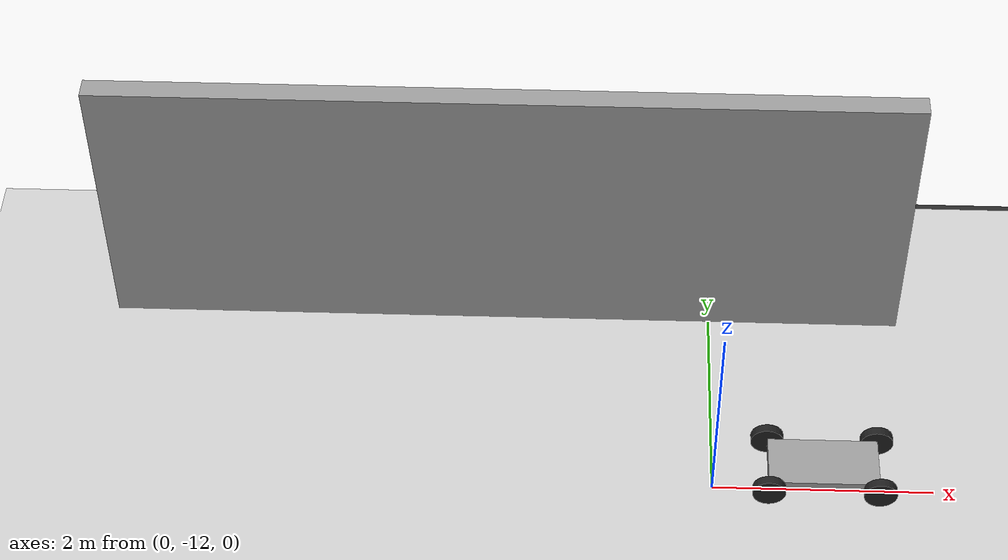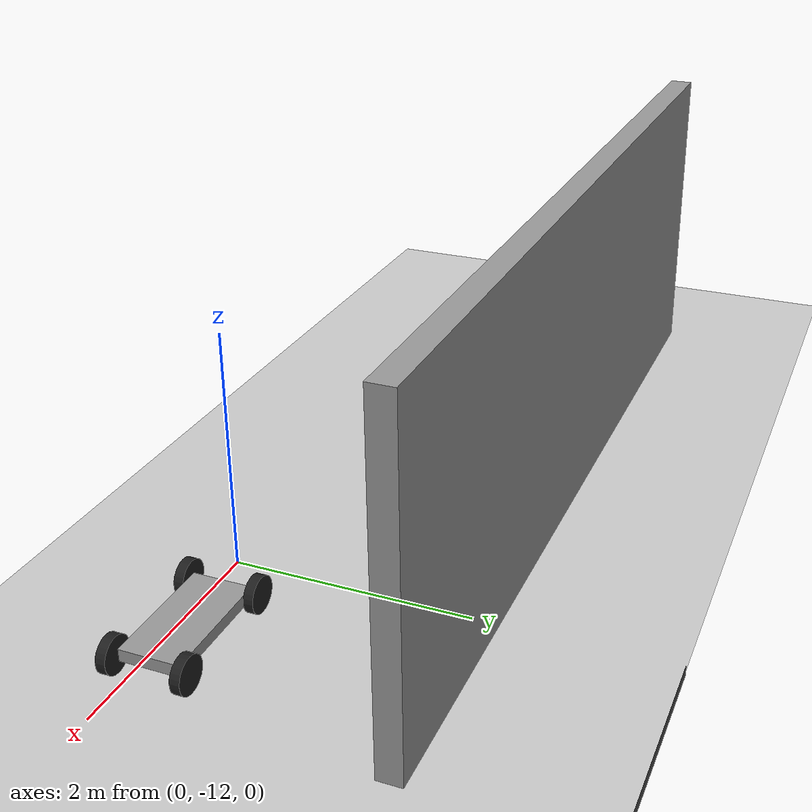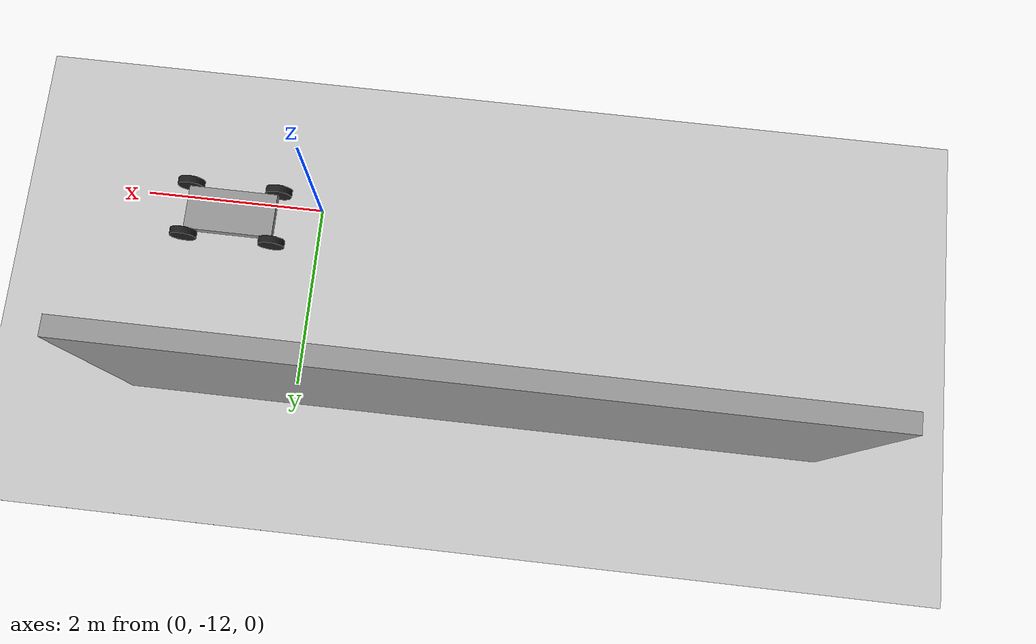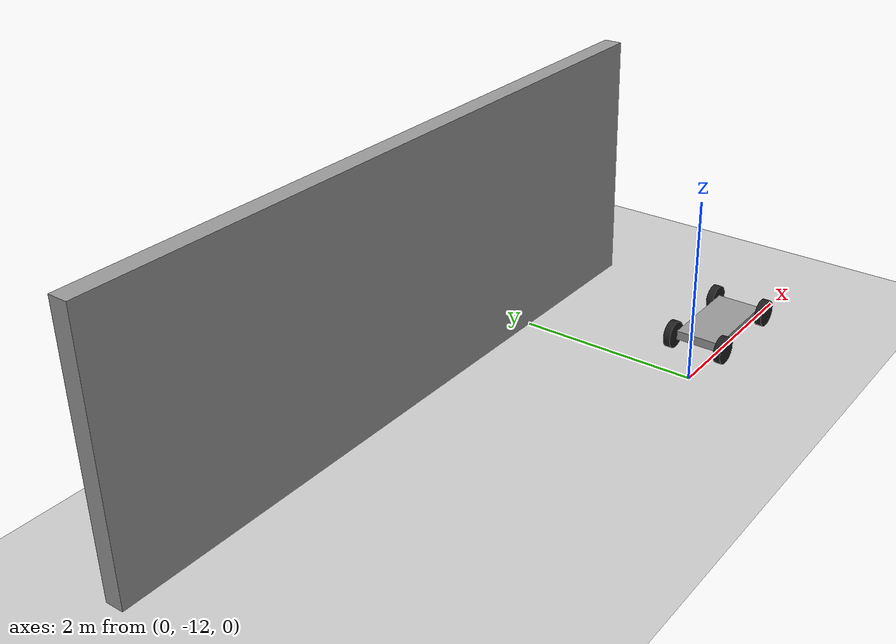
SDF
<sdf version="1.7">
 <world name="default">
  <model name="ground_plane">
   <static>1</static>
   <link name="link">
    <collision name="collision">
     <geometry><plane><normal>0 0 1</normal><size>100 100</size></plane></geometry>
     <surface><friction><ode><mu>100</mu><mu2>50</mu2></ode></friction></surface>
    </collision>
    <visual name="visual">
     <cast_shadows>0</cast_shadows>
     <geometry><plane><normal>0 0 1</normal><size>100 100</size></plane></geometry>
     <material>
      <script><uri>file://media/materials/scripts/gazebo.material</uri><name>Gazebo/Grey</name></script>
     </material>
    </visual>
   </link>
  </model>
  <model name="asphalt_plane">
   <static>1</static>
   <link name="link">
    <collision name="collision"><geometry><box><size>20 20 0.1</size></box></geometry></collision>
    <visual name="visual">
     <cast_shadows>0</cast_shadows>
     <geometry><box><size>20 20 0.1</size></box></geometry>
     <material>
      <script>
       <uri>model://asphalt_plane/materials/scripts</uri>
       <uri>model://asphalt_plane/materials/textures</uri>
       <name>vrc/asphalt</name>
      </script>
     </material>
    </visual>
   </link>
   <pose>10 10 0 0 -0 0</pose>
  </model>
  <model name="cart_front_steer">
   <link name="chassis">
    <pose>0 0 0.15 0 -0 0</pose>
    <inertial>
     <pose>0.1 0 0 0 -0 0</pose>
     <mass>10</mass>
     <inertia>
      <ixx>0.216667</ixx>
      <iyy>0.841667</iyy>
      <izz>1.04167</izz>
      <ixy>0</ixy>
      <ixz>0</ixz>
      <iyz>0</iyz>
     </inertia>
    </inertial>
    <collision name="collision"><geometry><box><size>1 0.5 0.1</size></box></geometry></collision>
    <visual name="visual">
     <geometry><box><size>1 0.5 0.1</size></box></geometry>
     <material>
      <script><uri>file://media/materials/scripts/gazebo.material</uri><name>Gazebo/Grey</name></script>
     </material>
    </visual>
   </link>
   <link name="wheel_front_left">
    <pose>0.5 0.298 0.15 -1.5708 -0.087266 0</pose>
    <inertial>
     <mass>0.5</mass>
     <inertia>
      <ixx>0.00307917</ixx>
      <iyy>0.00307917</iyy>
      <izz>0.005625</izz>
      <ixy>0</ixy>
      <ixz>0</ixz>
      <iyz>0</iyz>
     </inertia>
    </inertial>
    <collision name="collision">
     <geometry><cylinder><radius>0.15</radius><length>0.08</length></cylinder></geometry>
    </collision>
    <visual name="visual">
     <geometry><cylinder><radius>0.15</radius><length>0.08</length></cylinder></geometry>
     <material>
      <script><uri>file://media/materials/scripts/gazebo.material</uri><name>Gazebo/Black</name></script>
     </material>
    </visual>
   </link>
   <joint name="wheel_front_left_steer_spin" type="universal">
    <parent>chassis</parent>
    <child>wheel_front_left</child>
    <axis>
     <xyz>0 -1 0</xyz>
     <limit><lower>-0.610865</lower><upper>0.610865</upper></limit>
     <dynamics><spring_reference>0</spring_reference><spring_stiffness>0</spring_stiffness></dynamics>
    </axis>
    <axis2>
     <xyz>0 0 1</xyz>
     <limit><upper>1e+16</upper><lower>-1e+16</lower></limit>
     <dynamics><spring_reference>0</spring_reference><spring_stiffness>0</spring_stiffness></dynamics>
    </axis2>
   </joint>
   <link name="wheel_front_right">
    <pose>0.5 -0.298 0.15 -1.5708 -0.087266 0</pose>
    <inertial>
     <mass>0.5</mass>
     <inertia>
      <ixx>0.00307917</ixx>
      <iyy>0.00307917</iyy>
      <izz>0.005625</izz>
      <ixy>0</ixy>
      <ixz>0</ixz>
      <iyz>0</iyz>
     </inertia>
    </inertial>
    <collision name="collision">
     <geometry><cylinder><radius>0.15</radius><length>0.08</length></cylinder></geometry>
    </collision>
    <visual name="visual">
     <geometry><cylinder><radius>0.15</radius><length>0.08</length></cylinder></geometry>
     <material>
      <script><uri>file://media/materials/scripts/gazebo.material</uri><name>Gazebo/Black</name></script>
     </material>
    </visual>
   </link>
   <joint name="wheel_front_right_steer_spin" type="universal">
    <parent>chassis</parent>
    <child>wheel_front_right</child>
    <axis>
     <xyz>0 -1 0</xyz>
     <limit><lower>-0.610865</lower><upper>0.610865</upper></limit>
     <dynamics><spring_reference>0</spring_reference><spring_stiffness>0</spring_stiffness></dynamics>
    </axis>
    <axis2>
     <xyz>0 0 1</xyz>
     <limit><upper>1e+16</upper><lower>-1e+16</lower></limit>
     <dynamics><spring_reference>0</spring_reference><spring_stiffness>0</spring_stiffness></dynamics>
    </axis2>
   </joint>
   <link name="wheel_rear_left">
    <pose>-0.5 0.298 0.15 -1.5708 0 0</pose>
    <inertial>
     <mass>0.5</mass>
     <inertia>
      <ixx>0.00307917</ixx>
      <iyy>0.00307917</iyy>
      <izz>0.005625</izz>
      <ixy>0</ixy>
      <ixz>0</ixz>
      <iyz>0</iyz>
     </inertia>
    </inertial>
    <collision name="collision">
     <geometry><cylinder><radius>0.15</radius><length>0.08</length></cylinder></geometry>
    </collision>
    <visual name="visual">
     <geometry><cylinder><radius>0.15</radius><length>0.08</length></cylinder></geometry>
     <material>
      <script><uri>file://media/materials/scripts/gazebo.material</uri><name>Gazebo/Black</name></script>
     </material>
    </visual>
   </link>
   <joint name="wheel_rear_left_spin" type="revolute">
    <parent>chassis</parent>
    <child>wheel_rear_left</child>
    <axis>
     <xyz>0 0 1</xyz>
     <limit><lower>-1e+16</lower><upper>1e+16</upper></limit>
     <dynamics><spring_reference>0</spring_reference><spring_stiffness>0</spring_stiffness></dynamics>
    </axis>
   </joint>
   <link name="wheel_rear_right">
    <pose>-0.5 -0.298 0.15 -1.5708 0 0</pose>
    <inertial>
     <mass>0.5</mass>
     <inertia>
      <ixx>0.00307917</ixx>
      <iyy>0.00307917</iyy>
      <izz>0.005625</izz>
      <ixy>0</ixy>
      <ixz>0</ixz>
      <iyz>0</iyz>
     </inertia>
    </inertial>
    <collision name="collision">
     <geometry><cylinder><radius>0.15</radius><length>0.08</length></cylinder></geometry>
    </collision>
    <visual name="visual">
     <geometry><cylinder><radius>0.15</radius><length>0.08</length></cylinder></geometry>
     <material>
      <script><uri>file://media/materials/scripts/gazebo.material</uri><name>Gazebo/Black</name></script>
     </material>
    </visual>
   </link>
   <joint name="wheel_rear_right_spin" type="revolute">
    <parent>chassis</parent>
    <child>wheel_rear_right</child>
    <axis>
     <xyz>0 0 1</xyz>
     <limit><lower>-1e+16</lower><upper>1e+16</upper></limit>
     <dynamics><spring_reference>0</spring_reference><spring_stiffness>0</spring_stiffness></dynamics>
    </axis>
   </joint>
   <pose>0.999609 -11.8292 0 0 -0 0</pose>
  </model>
  <model name="grey_wall">
   <static>1</static>
   <link name="link">
    <pose>0 0 1.4 0 -0 0</pose>
    <collision name="collision"><geometry><box><size>7.5 0.2 2.8</size></box></geometry></collision>
    <visual name="visual">
     <cast_shadows>0</cast_shadows>
     <geometry><box><size>7.5 0.2 2.8</size></box></geometry>
     <material>
      <script>
       <uri>model://grey_wall/materials/scripts</uri>
       <uri>model://grey_wall/materials/textures</uri>
       <name>vrc/grey_wall</name>
      </script>
     </material>
    </visual>
   </link>
   <pose>-1.95194 -9.88326 0 0 -0 0</pose>
  </model>
 </world>
</sdf>
